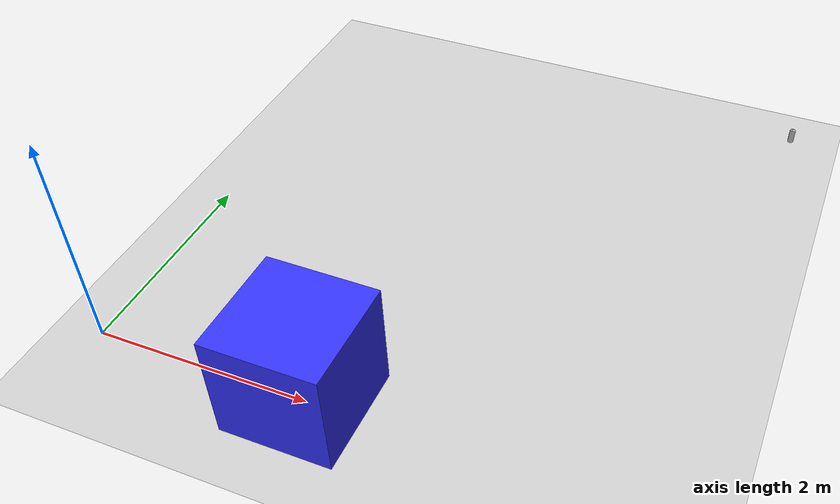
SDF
<?xml version="1.0" ?>
<sdf version="1.8">
  <world name="world_demo">
    <physics name="1ms" type="sdformat">
      <max_step_size>0.001</max_step_size>
      <real_time_factor>1.0</real_time_factor>
    </physics>
    <plugin
      filename="libignition-gazebo-physics-system.so"
      name="ignition::gazebo::systems::Physics">
    </plugin>
    <plugin
      filename="libignition-gazebo-user-commands-system.so"
      name="ignition::gazebo::systems::UserCommands">
    </plugin>
    <plugin
      filename="libignition-gazebo-scene-broadcaster-system.so"
      name="ignition::gazebo::systems::SceneBroadcaster">
    </plugin>
    <!--LiDAR -->
    <plugin
      filename="libignition-gazebo-sensors-system.so"
      name="ignition::gazebo::systems::Sensors">
      <render_engine>ogre2</render_engine>
    </plugin>
    <!--light-->
    <light type="directional" name="sun">
      <cast_shadows>true</cast_shadows>
      <pose>0 0 10 0 0 0</pose>
      <diffuse>0.8 0.8 0.8 1</diffuse>
      <specular>0.2 0.2 0.2 1</specular>
      <attenuation>
        <range>1000</range>
        <constant>0.9</constant>
        <linear>0.01</linear>
        <quadratic>0.001</quadratic>
      </attenuation>
      <direction>-0.5 0.1 -0.9</direction>
    </light>

    <include>
      <uri>https://fuel.gazebosim.org/1.0/OpenRobotics/models/Coke</uri>
      <pose>5 5 0 0 0 0</pose>
    </include>

    <model name="ground_plane">
            <static>true</static>
            <link name="link">
                <collision name="collision">
                <geometry>
                    <plane>
                    <normal>0 0 1</normal>
                    </plane>
                </geometry>
                </collision>
                <visual name="visual">
                <geometry>
                    <plane>
                    <normal>0 0 1</normal>
                    <size>100 100</size>
                    </plane>
                </geometry>
                <material>
                    <ambient>0.8 0.8 0.8 1</ambient>
                    <diffuse>0.8 0.8 0.8 1</diffuse>
                    <specular>0.8 0.8 0.8 1</specular>
                </material>
                </visual>
            </link>
      </model>

    <!-- Box at (1, 0) -->
    <model name="box_1_0">
      <pose>2 0 0.5 0 0 0</pose> <!-- Positioned on ground -->
      <link name="link">
        <collision name="collision">
          <geometry>
            <box>
              <size>1 1 1</size>
            </box>
          </geometry>
        </collision>
        <visual name="visual">
          <geometry>
            <box>
              <size>1 1 1</size>
            </box>
          </geometry>
          <material>
            <ambient>0.2 0.2 1 1</ambient>
            <diffuse>0.2 0.2 1 1</diffuse>
          </material>
        </visual>
      </link>
    </model>

  </world>
</sdf>

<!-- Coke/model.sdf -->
<sdf version="1.6">
  <model name='Coke'>
    <static>true</static>
    <link name="body">
      <pose>0 0 0 0 0 0</pose>

        <visual name="visual">
          <geometry>
            <mesh><uri>model://Coke/meshes/coke.obj</uri></mesh>
          </geometry>
        </visual>

        <collision name="collision">
          <geometry>
            <mesh><uri>model://Coke/meshes/coke.obj</uri></mesh>
          </geometry>
        </collision>

        <!-- TODO: Replace with accurate values of mass and inertia -->
        <inertial>
          <mass>1.0</mass>
          <inertia>
            <ixx>0.003366666666666667</ixx>
            <iyy>0.0008666666666666667</iyy>
            <izz>0.0041666666666666675</izz>
          </inertia>
        </inertial>

    </link>

  </model>
</sdf>
